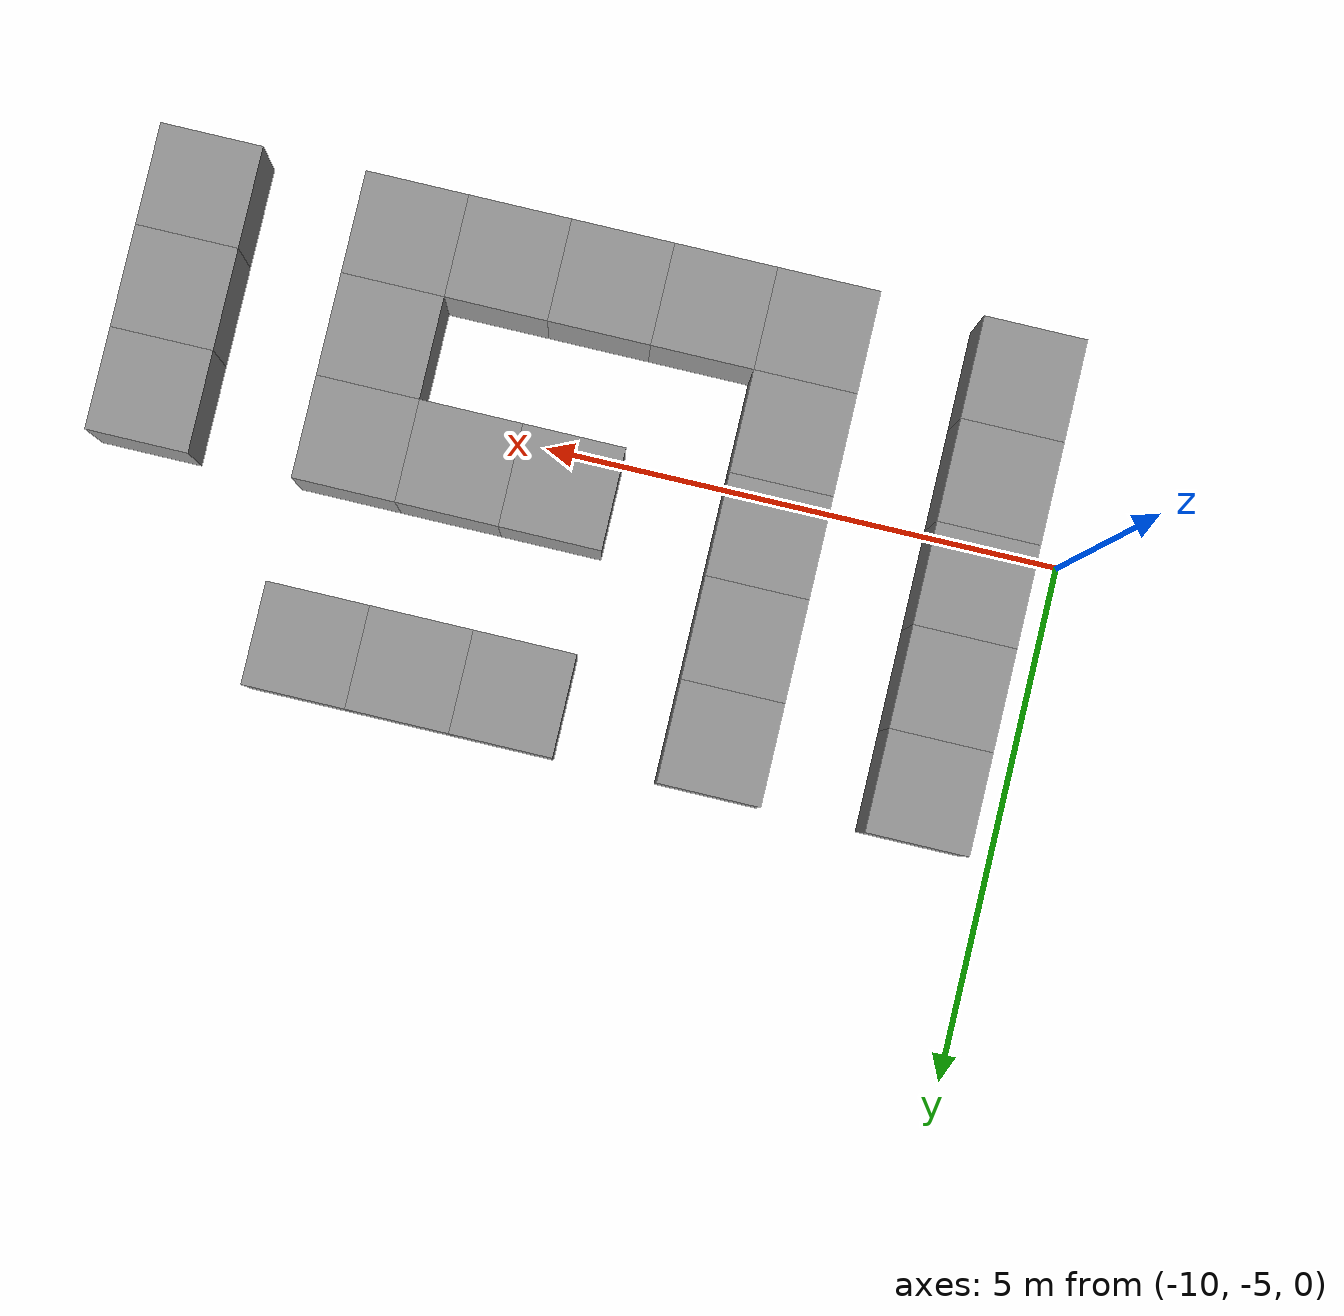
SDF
<sdf version="1.7">
 <model name="maze1">
  <link name="link_1_clone_118">
   <inertial>
    <mass>1</mass>
    <inertia>
     <ixx>0.166667</ixx>
     <ixy>0</ixy>
     <ixz>0</ixz>
     <iyy>0.166667</iyy>
     <iyz>0</iyz>
     <izz>0.166667</izz>
    </inertia>
   </inertial>
   <pose>-5.24618 -2.62535 -0 0 -0 0</pose>
   <visual name="visual">
    <geometry><box><size>1 1 1</size></box></geometry>
    <material>
     <lighting>1</lighting>
     <script><uri>file://media/materials/scripts/gazebo.material</uri><name>Gazebo/Grey</name></script>
     <shader type="pixel"><normal_map>__default__</normal_map></shader>
     <ambient>0.3 0.3 0.3 1</ambient>
     <diffuse>0.7 0.7 0.7 1</diffuse>
     <specular>0.01 0.01 0.01 1</specular>
     <emissive>0 0 0 1</emissive>
    </material>
   </visual>
   <collision name="collision">
    <geometry><box><size>1 1 1</size></box></geometry>
    <surface>
     <friction>
      <ode><mu>1</mu><mu2>1</mu2><fdir1>0 0 0</fdir1><slip1>0</slip1><slip2>0</slip2></ode>
      <torsional>
       <coefficient>1</coefficient>
       <patch_radius>0</patch_radius>
       <surface_radius>0</surface_radius>
       <use_patch_radius>1</use_patch_radius>
       <ode><slip>0</slip></ode>
      </torsional>
     </friction>
     <bounce><restitution_coefficient>0</restitution_coefficient><threshold>1e+06</threshold></bounce>
     <contact>
      <collide_without_contact>0</collide_without_contact>
      <collide_without_contact_bitmask>1</collide_without_contact_bitmask>
      <collide_bitmask>1</collide_bitmask>
      <ode>
       <soft_cfm>0</soft_cfm>
       <soft_erp>0.2</soft_erp>
       <kp>1e+13</kp>
       <kd>1</kd>
       <max_vel>0.01</max_vel>
       <min_depth>0</min_depth>
      </ode>
      <bullet>
       <split_impulse>1</split_impulse>
       <split_impulse_penetration_threshold>-0.01</split_impulse_penetration_threshold>
       <soft_cfm>0</soft_cfm>
       <soft_erp>0.2</soft_erp>
       <kp>1e+13</kp>
       <kd>1</kd>
      </bullet>
     </contact>
    </surface>
   </collision>
  </link>
  <link name="link_1_clone_119">
   <inertial>
    <mass>1</mass>
    <inertia>
     <ixx>0.166667</ixx>
     <ixy>0</ixy>
     <ixz>0</ixz>
     <iyy>0.166667</iyy>
     <iyz>0</iyz>
     <izz>0.166667</izz>
    </inertia>
   </inertial>
   <pose>-4.24618 -2.62535 -0 0 -0 0</pose>
   <visual name="visual">
    <geometry><box><size>1 1 1</size></box></geometry>
    <material>
     <lighting>1</lighting>
     <script><uri>file://media/materials/scripts/gazebo.material</uri><name>Gazebo/Grey</name></script>
     <shader type="pixel"><normal_map>__default__</normal_map></shader>
     <ambient>0.3 0.3 0.3 1</ambient>
     <diffuse>0.7 0.7 0.7 1</diffuse>
     <specular>0.01 0.01 0.01 1</specular>
     <emissive>0 0 0 1</emissive>
    </material>
   </visual>
   <collision name="collision">
    <geometry><box><size>1 1 1</size></box></geometry>
    <surface>
     <friction>
      <ode><mu>1</mu><mu2>1</mu2><fdir1>0 0 0</fdir1><slip1>0</slip1><slip2>0</slip2></ode>
      <torsional>
       <coefficient>1</coefficient>
       <patch_radius>0</patch_radius>
       <surface_radius>0</surface_radius>
       <use_patch_radius>1</use_patch_radius>
       <ode><slip>0</slip></ode>
      </torsional>
     </friction>
     <bounce><restitution_coefficient>0</restitution_coefficient><threshold>1e+06</threshold></bounce>
     <contact>
      <collide_without_contact>0</collide_without_contact>
      <collide_without_contact_bitmask>1</collide_without_contact_bitmask>
      <collide_bitmask>1</collide_bitmask>
      <ode>
       <soft_cfm>0</soft_cfm>
       <soft_erp>0.2</soft_erp>
       <kp>1e+13</kp>
       <kd>1</kd>
       <max_vel>0.01</max_vel>
       <min_depth>0</min_depth>
      </ode>
      <bullet>
       <split_impulse>1</split_impulse>
       <split_impulse_penetration_threshold>-0.01</split_impulse_penetration_threshold>
       <soft_cfm>0</soft_cfm>
       <soft_erp>0.2</soft_erp>
       <kp>1e+13</kp>
       <kd>1</kd>
      </bullet>
     </contact>
    </surface>
   </collision>
  </link>
  <link name="link_1_clone_120">
   <inertial>
    <mass>1</mass>
    <inertia>
     <ixx>0.166667</ixx>
     <ixy>0</ixy>
     <ixz>0</ixz>
     <iyy>0.166667</iyy>
     <iyz>0</iyz>
     <izz>0.166667</izz>
    </inertia>
   </inertial>
   <pose>-3.24618 -2.62535 -0 0 -0 0</pose>
   <visual name="visual">
    <geometry><box><size>1 1 1</size></box></geometry>
    <material>
     <lighting>1</lighting>
     <script><uri>file://media/materials/scripts/gazebo.material</uri><name>Gazebo/Grey</name></script>
     <shader type="pixel"><normal_map>__default__</normal_map></shader>
     <ambient>0.3 0.3 0.3 1</ambient>
     <diffuse>0.7 0.7 0.7 1</diffuse>
     <specular>0.01 0.01 0.01 1</specular>
     <emissive>0 0 0 1</emissive>
    </material>
   </visual>
   <collision name="collision">
    <geometry><box><size>1 1 1</size></box></geometry>
    <surface>
     <friction>
      <ode><mu>1</mu><mu2>1</mu2><fdir1>0 0 0</fdir1><slip1>0</slip1><slip2>0</slip2></ode>
      <torsional>
       <coefficient>1</coefficient>
       <patch_radius>0</patch_radius>
       <surface_radius>0</surface_radius>
       <use_patch_radius>1</use_patch_radius>
       <ode><slip>0</slip></ode>
      </torsional>
     </friction>
     <bounce><restitution_coefficient>0</restitution_coefficient><threshold>1e+06</threshold></bounce>
     <contact>
      <collide_without_contact>0</collide_without_contact>
      <collide_without_contact_bitmask>1</collide_without_contact_bitmask>
      <collide_bitmask>1</collide_bitmask>
      <ode>
       <soft_cfm>0</soft_cfm>
       <soft_erp>0.2</soft_erp>
       <kp>1e+13</kp>
       <kd>1</kd>
       <max_vel>0.01</max_vel>
       <min_depth>0</min_depth>
      </ode>
      <bullet>
       <split_impulse>1</split_impulse>
       <split_impulse_penetration_threshold>-0.01</split_impulse_penetration_threshold>
       <soft_cfm>0</soft_cfm>
       <soft_erp>0.2</soft_erp>
       <kp>1e+13</kp>
       <kd>1</kd>
      </bullet>
     </contact>
    </surface>
   </collision>
  </link>
  <link name="link_1_clone_122">
   <inertial>
    <mass>1</mass>
    <inertia>
     <ixx>0.166667</ixx>
     <ixy>0</ixy>
     <ixz>0</ixz>
     <iyy>0.166667</iyy>
     <iyz>0</iyz>
     <izz>0.166667</izz>
    </inertia>
   </inertial>
   <pose>-7.24618 -2.62535 -0 0 -0 0</pose>
   <visual name="visual">
    <geometry><box><size>1 1 1</size></box></geometry>
    <material>
     <lighting>1</lighting>
     <script><uri>file://media/materials/scripts/gazebo.material</uri><name>Gazebo/Grey</name></script>
     <shader type="pixel"><normal_map>__default__</normal_map></shader>
     <ambient>0.3 0.3 0.3 1</ambient>
     <diffuse>0.7 0.7 0.7 1</diffuse>
     <specular>0.01 0.01 0.01 1</specular>
     <emissive>0 0 0 1</emissive>
    </material>
   </visual>
   <collision name="collision">
    <geometry><box><size>1 1 1</size></box></geometry>
    <surface>
     <friction>
      <ode><mu>1</mu><mu2>1</mu2><fdir1>0 0 0</fdir1><slip1>0</slip1><slip2>0</slip2></ode>
      <torsional>
       <coefficient>1</coefficient>
       <patch_radius>0</patch_radius>
       <surface_radius>0</surface_radius>
       <use_patch_radius>1</use_patch_radius>
       <ode><slip>0</slip></ode>
      </torsional>
     </friction>
     <bounce><restitution_coefficient>0</restitution_coefficient><threshold>1e+06</threshold></bounce>
     <contact>
      <collide_without_contact>0</collide_without_contact>
      <collide_without_contact_bitmask>1</collide_without_contact_bitmask>
      <collide_bitmask>1</collide_bitmask>
      <ode>
       <soft_cfm>0</soft_cfm>
       <soft_erp>0.2</soft_erp>
       <kp>1e+13</kp>
       <kd>1</kd>
       <max_vel>0.01</max_vel>
       <min_depth>0</min_depth>
      </ode>
      <bullet>
       <split_impulse>1</split_impulse>
       <split_impulse_penetration_threshold>-0.01</split_impulse_penetration_threshold>
       <soft_cfm>0</soft_cfm>
       <soft_erp>0.2</soft_erp>
       <kp>1e+13</kp>
       <kd>1</kd>
      </bullet>
     </contact>
    </surface>
   </collision>
  </link>
  <link name="link_1_clone_123">
   <inertial>
    <mass>1</mass>
    <inertia>
     <ixx>0.166667</ixx>
     <ixy>0</ixy>
     <ixz>0</ixz>
     <iyy>0.166667</iyy>
     <iyz>0</iyz>
     <izz>0.166667</izz>
    </inertia>
   </inertial>
   <pose>-7.24618 -3.62535 -0 0 -0 0</pose>
   <visual name="visual">
    <geometry><box><size>1 1 1</size></box></geometry>
    <material>
     <lighting>1</lighting>
     <script><uri>file://media/materials/scripts/gazebo.material</uri><name>Gazebo/Grey</name></script>
     <shader type="pixel"><normal_map>__default__</normal_map></shader>
     <ambient>0.3 0.3 0.3 1</ambient>
     <diffuse>0.7 0.7 0.7 1</diffuse>
     <specular>0.01 0.01 0.01 1</specular>
     <emissive>0 0 0 1</emissive>
    </material>
   </visual>
   <collision name="collision">
    <geometry><box><size>1 1 1</size></box></geometry>
    <surface>
     <friction>
      <ode><mu>1</mu><mu2>1</mu2><fdir1>0 0 0</fdir1><slip1>0</slip1><slip2>0</slip2></ode>
      <torsional>
       <coefficient>1</coefficient>
       <patch_radius>0</patch_radius>
       <surface_radius>0</surface_radius>
       <use_patch_radius>1</use_patch_radius>
       <ode><slip>0</slip></ode>
      </torsional>
     </friction>
     <bounce><restitution_coefficient>0</restitution_coefficient><threshold>1e+06</threshold></bounce>
     <contact>
      <collide_without_contact>0</collide_without_contact>
      <collide_without_contact_bitmask>1</collide_without_contact_bitmask>
      <collide_bitmask>1</collide_bitmask>
      <ode>
       <soft_cfm>0</soft_cfm>
       <soft_erp>0.2</soft_erp>
       <kp>1e+13</kp>
       <kd>1</kd>
       <max_vel>0.01</max_vel>
       <min_depth>0</min_depth>
      </ode>
      <bullet>
       <split_impulse>1</split_impulse>
       <split_impulse_penetration_threshold>-0.01</split_impulse_penetration_threshold>
       <soft_cfm>0</soft_cfm>
       <soft_erp>0.2</soft_erp>
       <kp>1e+13</kp>
       <kd>1</kd>
      </bullet>
     </contact>
    </surface>
   </collision>
  </link>
  <link name="link_1_clone_124">
   <inertial>
    <mass>1</mass>
    <inertia>
     <ixx>0.166667</ixx>
     <ixy>0</ixy>
     <ixz>0</ixz>
     <iyy>0.166667</iyy>
     <iyz>0</iyz>
     <izz>0.166667</izz>
    </inertia>
   </inertial>
   <pose>-7.24618 -4.62534 -0 0 -0 0</pose>
   <visual name="visual">
    <geometry><box><size>1 1 1</size></box></geometry>
    <material>
     <lighting>1</lighting>
     <script><uri>file://media/materials/scripts/gazebo.material</uri><name>Gazebo/Grey</name></script>
     <shader type="pixel"><normal_map>__default__</normal_map></shader>
     <ambient>0.3 0.3 0.3 1</ambient>
     <diffuse>0.7 0.7 0.7 1</diffuse>
     <specular>0.01 0.01 0.01 1</specular>
     <emissive>0 0 0 1</emissive>
    </material>
   </visual>
   <collision name="collision">
    <geometry><box><size>1 1 1</size></box></geometry>
    <surface>
     <friction>
      <ode><mu>1</mu><mu2>1</mu2><fdir1>0 0 0</fdir1><slip1>0</slip1><slip2>0</slip2></ode>
      <torsional>
       <coefficient>1</coefficient>
       <patch_radius>0</patch_radius>
       <surface_radius>0</surface_radius>
       <use_patch_radius>1</use_patch_radius>
       <ode><slip>0</slip></ode>
      </torsional>
     </friction>
     <bounce><restitution_coefficient>0</restitution_coefficient><threshold>1e+06</threshold></bounce>
     <contact>
      <collide_without_contact>0</collide_without_contact>
      <collide_without_contact_bitmask>1</collide_without_contact_bitmask>
      <collide_bitmask>1</collide_bitmask>
      <ode>
       <soft_cfm>0</soft_cfm>
       <soft_erp>0.2</soft_erp>
       <kp>1e+13</kp>
       <kd>1</kd>
       <max_vel>0.01</max_vel>
       <min_depth>0</min_depth>
      </ode>
      <bullet>
       <split_impulse>1</split_impulse>
       <split_impulse_penetration_threshold>-0.01</split_impulse_penetration_threshold>
       <soft_cfm>0</soft_cfm>
       <soft_erp>0.2</soft_erp>
       <kp>1e+13</kp>
       <kd>1</kd>
      </bullet>
     </contact>
    </surface>
   </collision>
  </link>
  <link name="link_1_clone_125">
   <inertial>
    <mass>1</mass>
    <inertia>
     <ixx>0.166667</ixx>
     <ixy>0</ixy>
     <ixz>0</ixz>
     <iyy>0.166667</iyy>
     <iyz>0</iyz>
     <izz>0.166667</izz>
    </inertia>
   </inertial>
   <pose>-7.24618 -5.62535 -0 0 -0 0</pose>
   <visual name="visual">
    <geometry><box><size>1 1 1</size></box></geometry>
    <material>
     <lighting>1</lighting>
     <script><uri>file://media/materials/scripts/gazebo.material</uri><name>Gazebo/Grey</name></script>
     <shader type="pixel"><normal_map>__default__</normal_map></shader>
     <ambient>0.3 0.3 0.3 1</ambient>
     <diffuse>0.7 0.7 0.7 1</diffuse>
     <specular>0.01 0.01 0.01 1</specular>
     <emissive>0 0 0 1</emissive>
    </material>
   </visual>
   <collision name="collision">
    <geometry><box><size>1 1 1</size></box></geometry>
    <surface>
     <friction>
      <ode><mu>1</mu><mu2>1</mu2><fdir1>0 0 0</fdir1><slip1>0</slip1><slip2>0</slip2></ode>
      <torsional>
       <coefficient>1</coefficient>
       <patch_radius>0</patch_radius>
       <surface_radius>0</surface_radius>
       <use_patch_radius>1</use_patch_radius>
       <ode><slip>0</slip></ode>
      </torsional>
     </friction>
     <bounce><restitution_coefficient>0</restitution_coefficient><threshold>1e+06</threshold></bounce>
     <contact>
      <collide_without_contact>0</collide_without_contact>
      <collide_without_contact_bitmask>1</collide_without_contact_bitmask>
      <collide_bitmask>1</collide_bitmask>
      <ode>
       <soft_cfm>0</soft_cfm>
       <soft_erp>0.2</soft_erp>
       <kp>1e+13</kp>
       <kd>1</kd>
       <max_vel>0.01</max_vel>
       <min_depth>0</min_depth>
      </ode>
      <bullet>
       <split_impulse>1</split_impulse>
       <split_impulse_penetration_threshold>-0.01</split_impulse_penetration_threshold>
       <soft_cfm>0</soft_cfm>
       <soft_erp>0.2</soft_erp>
       <kp>1e+13</kp>
       <kd>1</kd>
      </bullet>
     </contact>
    </surface>
   </collision>
  </link>
  <link name="link_1_clone_126">
   <inertial>
    <mass>1</mass>
    <inertia>
     <ixx>0.166667</ixx>
     <ixy>0</ixy>
     <ixz>0</ixz>
     <iyy>0.166667</iyy>
     <iyz>0</iyz>
     <izz>0.166667</izz>
    </inertia>
   </inertial>
   <pose>-7.24618 -6.62535 -0 0 -0 0</pose>
   <visual name="visual">
    <geometry><box><size>1 1 1</size></box></geometry>
    <material>
     <lighting>1</lighting>
     <script><uri>file://media/materials/scripts/gazebo.material</uri><name>Gazebo/Grey</name></script>
     <shader type="pixel"><normal_map>__default__</normal_map></shader>
     <ambient>0.3 0.3 0.3 1</ambient>
     <diffuse>0.7 0.7 0.7 1</diffuse>
     <specular>0.01 0.01 0.01 1</specular>
     <emissive>0 0 0 1</emissive>
    </material>
   </visual>
   <collision name="collision">
    <geometry><box><size>1 1 1</size></box></geometry>
    <surface>
     <friction>
      <ode><mu>1</mu><mu2>1</mu2><fdir1>0 0 0</fdir1><slip1>0</slip1><slip2>0</slip2></ode>
      <torsional>
       <coefficient>1</coefficient>
       <patch_radius>0</patch_radius>
       <surface_radius>0</surface_radius>
       <use_patch_radius>1</use_patch_radius>
       <ode><slip>0</slip></ode>
      </torsional>
     </friction>
     <bounce><restitution_coefficient>0</restitution_coefficient><threshold>1e+06</threshold></bounce>
     <contact>
      <collide_without_contact>0</collide_without_contact>
      <collide_without_contact_bitmask>1</collide_without_contact_bitmask>
      <collide_bitmask>1</collide_bitmask>
      <ode>
       <soft_cfm>0</soft_cfm>
       <soft_erp>0.2</soft_erp>
       <kp>1e+13</kp>
       <kd>1</kd>
       <max_vel>0.01</max_vel>
       <min_depth>0</min_depth>
      </ode>
      <bullet>
       <split_impulse>1</split_impulse>
       <split_impulse_penetration_threshold>-0.01</split_impulse_penetration_threshold>
       <soft_cfm>0</soft_cfm>
       <soft_erp>0.2</soft_erp>
       <kp>1e+13</kp>
       <kd>1</kd>
      </bullet>
     </contact>
    </surface>
   </collision>
  </link>
  <link name="link_1_clone_194">
   <inertial>
    <mass>1</mass>
    <inertia>
     <ixx>0.166667</ixx>
     <ixy>0</ixy>
     <ixz>0</ixz>
     <iyy>0.166667</iyy>
     <iyz>0</iyz>
     <izz>0.166667</izz>
    </inertia>
   </inertial>
   <pose>-1.24618 -4.62534 -0 0 -0 0</pose>
   <visual name="visual">
    <geometry><box><size>1 1 1</size></box></geometry>
    <material>
     <lighting>1</lighting>
     <script><uri>file://media/materials/scripts/gazebo.material</uri><name>Gazebo/Grey</name></script>
     <shader type="pixel"><normal_map>__default__</normal_map></shader>
     <ambient>0.3 0.3 0.3 1</ambient>
     <diffuse>0.7 0.7 0.7 1</diffuse>
     <specular>0.01 0.01 0.01 1</specular>
     <emissive>0 0 0 1</emissive>
    </material>
   </visual>
   <collision name="collision">
    <geometry><box><size>1 1 1</size></box></geometry>
    <surface>
     <friction>
      <ode><mu>1</mu><mu2>1</mu2><fdir1>0 0 0</fdir1><slip1>0</slip1><slip2>0</slip2></ode>
      <torsional>
       <coefficient>1</coefficient>
       <patch_radius>0</patch_radius>
       <surface_radius>0</surface_radius>
       <use_patch_radius>1</use_patch_radius>
       <ode><slip>0</slip></ode>
      </torsional>
     </friction>
     <bounce><restitution_coefficient>0</restitution_coefficient><threshold>1e+06</threshold></bounce>
     <contact>
      <collide_without_contact>0</collide_without_contact>
      <collide_without_contact_bitmask>1</collide_without_contact_bitmask>
      <collide_bitmask>1</collide_bitmask>
      <ode>
       <soft_cfm>0</soft_cfm>
       <soft_erp>0.2</soft_erp>
       <kp>1e+13</kp>
       <kd>1</kd>
       <max_vel>0.01</max_vel>
       <min_depth>0</min_depth>
      </ode>
      <bullet>
       <split_impulse>1</split_impulse>
       <split_impulse_penetration_threshold>-0.01</split_impulse_penetration_threshold>
       <soft_cfm>0</soft_cfm>
       <soft_erp>0.2</soft_erp>
       <kp>1e+13</kp>
       <kd>1</kd>
      </bullet>
     </contact>
    </surface>
   </collision>
  </link>
  <link name="link_1_clone_195">
   <inertial>
    <mass>1</mass>
    <inertia>
     <ixx>0.166667</ixx>
     <ixy>0</ixy>
     <ixz>0</ixz>
     <iyy>0.166667</iyy>
     <iyz>0</iyz>
     <izz>0.166667</izz>
    </inertia>
   </inertial>
   <pose>-1.24618 -5.62535 -0 0 -0 0</pose>
   <visual name="visual">
    <geometry><box><size>1 1 1</size></box></geometry>
    <material>
     <lighting>1</lighting>
     <script><uri>file://media/materials/scripts/gazebo.material</uri><name>Gazebo/Grey</name></script>
     <shader type="pixel"><normal_map>__default__</normal_map></shader>
     <ambient>0.3 0.3 0.3 1</ambient>
     <diffuse>0.7 0.7 0.7 1</diffuse>
     <specular>0.01 0.01 0.01 1</specular>
     <emissive>0 0 0 1</emissive>
    </material>
   </visual>
   <collision name="collision">
    <geometry><box><size>1 1 1</size></box></geometry>
    <surface>
     <friction>
      <ode><mu>1</mu><mu2>1</mu2><fdir1>0 0 0</fdir1><slip1>0</slip1><slip2>0</slip2></ode>
      <torsional>
       <coefficient>1</coefficient>
       <patch_radius>0</patch_radius>
       <surface_radius>0</surface_radius>
       <use_patch_radius>1</use_patch_radius>
       <ode><slip>0</slip></ode>
      </torsional>
     </friction>
     <bounce><restitution_coefficient>0</restitution_coefficient><threshold>1e+06</threshold></bounce>
     <contact>
      <collide_without_contact>0</collide_without_contact>
      <collide_without_contact_bitmask>1</collide_without_contact_bitmask>
      <collide_bitmask>1</collide_bitmask>
      <ode>
       <soft_cfm>0</soft_cfm>
       <soft_erp>0.2</soft_erp>
       <kp>1e+13</kp>
       <kd>1</kd>
       <max_vel>0.01</max_vel>
       <min_depth>0</min_depth>
      </ode>
      <bullet>
       <split_impulse>1</split_impulse>
       <split_impulse_penetration_threshold>-0.01</split_impulse_penetration_threshold>
       <soft_cfm>0</soft_cfm>
       <soft_erp>0.2</soft_erp>
       <kp>1e+13</kp>
       <kd>1</kd>
      </bullet>
     </contact>
    </surface>
   </collision>
  </link>
  <link name="link_1_clone_196">
   <inertial>
    <mass>1</mass>
    <inertia>
     <ixx>0.166667</ixx>
     <ixy>0</ixy>
     <ixz>0</ixz>
     <iyy>0.166667</iyy>
     <iyz>0</iyz>
     <izz>0.166667</izz>
    </inertia>
   </inertial>
   <pose>-1.24618 -6.62535 -0 0 -0 0</pose>
   <visual name="visual">
    <geometry><box><size>1 1 1</size></box></geometry>
    <material>
     <lighting>1</lighting>
     <script><uri>file://media/materials/scripts/gazebo.material</uri><name>Gazebo/Grey</name></script>
     <shader type="pixel"><normal_map>__default__</normal_map></shader>
     <ambient>0.3 0.3 0.3 1</ambient>
     <diffuse>0.7 0.7 0.7 1</diffuse>
     <specular>0.01 0.01 0.01 1</specular>
     <emissive>0 0 0 1</emissive>
    </material>
   </visual>
   <collision name="collision">
    <geometry><box><size>1 1 1</size></box></geometry>
    <surface>
     <friction>
      <ode><mu>1</mu><mu2>1</mu2><fdir1>0 0 0</fdir1><slip1>0</slip1><slip2>0</slip2></ode>
      <torsional>
       <coefficient>1</coefficient>
       <patch_radius>0</patch_radius>
       <surface_radius>0</surface_radius>
       <use_patch_radius>1</use_patch_radius>
       <ode><slip>0</slip></ode>
      </torsional>
     </friction>
     <bounce><restitution_coefficient>0</restitution_coefficient><threshold>1e+06</threshold></bounce>
     <contact>
      <collide_without_contact>0</collide_without_contact>
      <collide_without_contact_bitmask>1</collide_without_contact_bitmask>
      <collide_bitmask>1</collide_bitmask>
      <ode>
       <soft_cfm>0</soft_cfm>
       <soft_erp>0.2</soft_erp>
       <kp>1e+13</kp>
       <kd>1</kd>
       <max_vel>0.01</max_vel>
       <min_depth>0</min_depth>
      </ode>
      <bullet>
       <split_impulse>1</split_impulse>
       <split_impulse_penetration_threshold>-0.01</split_impulse_penetration_threshold>
       <soft_cfm>0</soft_cfm>
       <soft_erp>0.2</soft_erp>
       <kp>1e+13</kp>
       <kd>1</kd>
      </bullet>
     </contact>
    </surface>
   </collision>
  </link>
  <link name="link_1_clone_206">
   <inertial>
    <mass>1</mass>
    <inertia>
     <ixx>0.166667</ixx>
     <ixy>0</ixy>
     <ixz>0</ixz>
     <iyy>0.166667</iyy>
     <iyz>0</iyz>
     <izz>0.166667</izz>
    </inertia>
   </inertial>
   <pose>-3.24618 -5.62535 -0 0 -0 0</pose>
   <visual name="visual">
    <geometry><box><size>1 1 1</size></box></geometry>
    <material>
     <lighting>1</lighting>
     <script><uri>file://media/materials/scripts/gazebo.material</uri><name>Gazebo/Grey</name></script>
     <shader type="pixel"><normal_map>__default__</normal_map></shader>
     <ambient>0.3 0.3 0.3 1</ambient>
     <diffuse>0.7 0.7 0.7 1</diffuse>
     <specular>0.01 0.01 0.01 1</specular>
     <emissive>0 0 0 1</emissive>
    </material>
   </visual>
   <collision name="collision">
    <geometry><box><size>1 1 1</size></box></geometry>
    <surface>
     <friction>
      <ode><mu>1</mu><mu2>1</mu2><fdir1>0 0 0</fdir1><slip1>0</slip1><slip2>0</slip2></ode>
      <torsional>
       <coefficient>1</coefficient>
       <patch_radius>0</patch_radius>
       <surface_radius>0</surface_radius>
       <use_patch_radius>1</use_patch_radius>
       <ode><slip>0</slip></ode>
      </torsional>
     </friction>
     <bounce><restitution_coefficient>0</restitution_coefficient><threshold>1e+06</threshold></bounce>
     <contact>
      <collide_without_contact>0</collide_without_contact>
      <collide_without_contact_bitmask>1</collide_without_contact_bitmask>
      <collide_bitmask>1</collide_bitmask>
      <ode>
       <soft_cfm>0</soft_cfm>
       <soft_erp>0.2</soft_erp>
       <kp>1e+13</kp>
       <kd>1</kd>
       <max_vel>0.01</max_vel>
       <min_depth>0</min_depth>
      </ode>
      <bullet>
       <split_impulse>1</split_impulse>
       <split_impulse_penetration_threshold>-0.01</split_impulse_penetration_threshold>
       <soft_cfm>0</soft_cfm>
       <soft_erp>0.2</soft_erp>
       <kp>1e+13</kp>
       <kd>1</kd>
      </bullet>
     </contact>
    </surface>
   </collision>
  </link>
  <link name="link_1_clone_207">
   <inertial>
    <mass>1</mass>
    <inertia>
     <ixx>0.166667</ixx>
     <ixy>0</ixy>
     <ixz>0</ixz>
     <iyy>0.166667</iyy>
     <iyz>0</iyz>
     <izz>0.166667</izz>
    </inertia>
   </inertial>
   <pose>-5.24618 -4.62534 -0 0 -0 0</pose>
   <visual name="visual">
    <geometry><box><size>1 1 1</size></box></geometry>
    <material>
     <lighting>1</lighting>
     <script><uri>file://media/materials/scripts/gazebo.material</uri><name>Gazebo/Grey</name></script>
     <shader type="pixel"><normal_map>__default__</normal_map></shader>
     <ambient>0.3 0.3 0.3 1</ambient>
     <diffuse>0.7 0.7 0.7 1</diffuse>
     <specular>0.01 0.01 0.01 1</specular>
     <emissive>0 0 0 1</emissive>
    </material>
   </visual>
   <collision name="collision">
    <geometry><box><size>1 1 1</size></box></geometry>
    <surface>
     <friction>
      <ode><mu>1</mu><mu2>1</mu2><fdir1>0 0 0</fdir1><slip1>0</slip1><slip2>0</slip2></ode>
      <torsional>
       <coefficient>1</coefficient>
       <patch_radius>0</patch_radius>
       <surface_radius>0</surface_radius>
       <use_patch_radius>1</use_patch_radius>
       <ode><slip>0</slip></ode>
      </torsional>
     </friction>
     <bounce><restitution_coefficient>0</restitution_coefficient><threshold>1e+06</threshold></bounce>
     <contact>
      <collide_without_contact>0</collide_without_contact>
      <collide_without_contact_bitmask>1</collide_without_contact_bitmask>
      <collide_bitmask>1</collide_bitmask>
      <ode>
       <soft_cfm>0</soft_cfm>
       <soft_erp>0.2</soft_erp>
       <kp>1e+13</kp>
       <kd>1</kd>
       <max_vel>0.01</max_vel>
       <min_depth>0</min_depth>
      </ode>
      <bullet>
       <split_impulse>1</split_impulse>
       <split_impulse_penetration_threshold>-0.01</split_impulse_penetration_threshold>
       <soft_cfm>0</soft_cfm>
       <soft_erp>0.2</soft_erp>
       <kp>1e+13</kp>
       <kd>1</kd>
      </bullet>
     </contact>
    </surface>
   </collision>
  </link>
  <link name="link_1_clone_208">
   <inertial>
    <mass>1</mass>
    <inertia>
     <ixx>0.166667</ixx>
     <ixy>0</ixy>
     <ixz>0</ixz>
     <iyy>0.166667</iyy>
     <iyz>0</iyz>
     <izz>0.166667</izz>
    </inertia>
   </inertial>
   <pose>-4.24618 -4.62534 -0 0 -0 0</pose>
   <visual name="visual">
    <geometry><box><size>1 1 1</size></box></geometry>
    <material>
     <lighting>1</lighting>
     <script><uri>file://media/materials/scripts/gazebo.material</uri><name>Gazebo/Grey</name></script>
     <shader type="pixel"><normal_map>__default__</normal_map></shader>
     <ambient>0.3 0.3 0.3 1</ambient>
     <diffuse>0.7 0.7 0.7 1</diffuse>
     <specular>0.01 0.01 0.01 1</specular>
     <emissive>0 0 0 1</emissive>
    </material>
   </visual>
   <collision name="collision">
    <geometry><box><size>1 1 1</size></box></geometry>
    <surface>
     <friction>
      <ode><mu>1</mu><mu2>1</mu2><fdir1>0 0 0</fdir1><slip1>0</slip1><slip2>0</slip2></ode>
      <torsional>
       <coefficient>1</coefficient>
       <patch_radius>0</patch_radius>
       <surface_radius>0</surface_radius>
       <use_patch_radius>1</use_patch_radius>
       <ode><slip>0</slip></ode>
      </torsional>
     </friction>
     <bounce><restitution_coefficient>0</restitution_coefficient><threshold>1e+06</threshold></bounce>
     <contact>
      <collide_without_contact>0</collide_without_contact>
      <collide_without_contact_bitmask>1</collide_without_contact_bitmask>
      <collide_bitmask>1</collide_bitmask>
      <ode>
       <soft_cfm>0</soft_cfm>
       <soft_erp>0.2</soft_erp>
       <kp>1e+13</kp>
       <kd>1</kd>
       <max_vel>0.01</max_vel>
       <min_depth>0</min_depth>
      </ode>
      <bullet>
       <split_impulse>1</split_impulse>
       <split_impulse_penetration_threshold>-0.01</split_impulse_penetration_threshold>
       <soft_cfm>0</soft_cfm>
       <soft_erp>0.2</soft_erp>
       <kp>1e+13</kp>
       <kd>1</kd>
      </bullet>
     </contact>
    </surface>
   </collision>
  </link>
  <link name="link_1_clone_209">
   <inertial>
    <mass>1</mass>
    <inertia>
     <ixx>0.166667</ixx>
     <ixy>0</ixy>
     <ixz>0</ixz>
     <iyy>0.166667</iyy>
     <iyz>0</iyz>
     <izz>0.166667</izz>
    </inertia>
   </inertial>
   <pose>-3.24618 -4.62534 -0 0 -0 0</pose>
   <visual name="visual">
    <geometry><box><size>1 1 1</size></box></geometry>
    <material>
     <lighting>1</lighting>
     <script><uri>file://media/materials/scripts/gazebo.material</uri><name>Gazebo/Grey</name></script>
     <shader type="pixel"><normal_map>__default__</normal_map></shader>
     <ambient>0.3 0.3 0.3 1</ambient>
     <diffuse>0.7 0.7 0.7 1</diffuse>
     <specular>0.01 0.01 0.01 1</specular>
     <emissive>0 0 0 1</emissive>
    </material>
   </visual>
   <collision name="collision">
    <geometry><box><size>1 1 1</size></box></geometry>
    <surface>
     <friction>
      <ode><mu>1</mu><mu2>1</mu2><fdir1>0 0 0</fdir1><slip1>0</slip1><slip2>0</slip2></ode>
      <torsional>
       <coefficient>1</coefficient>
       <patch_radius>0</patch_radius>
       <surface_radius>0</surface_radius>
       <use_patch_radius>1</use_patch_radius>
       <ode><slip>0</slip></ode>
      </torsional>
     </friction>
     <bounce><restitution_coefficient>0</restitution_coefficient><threshold>1e+06</threshold></bounce>
     <contact>
      <collide_without_contact>0</collide_without_contact>
      <collide_without_contact_bitmask>1</collide_without_contact_bitmask>
      <collide_bitmask>1</collide_bitmask>
      <ode>
       <soft_cfm>0</soft_cfm>
       <soft_erp>0.2</soft_erp>
       <kp>1e+13</kp>
       <kd>1</kd>
       <max_vel>0.01</max_vel>
       <min_depth>0</min_depth>
      </ode>
      <bullet>
       <split_impulse>1</split_impulse>
       <split_impulse_penetration_threshold>-0.01</split_impulse_penetration_threshold>
       <soft_cfm>0</soft_cfm>
       <soft_erp>0.2</soft_erp>
       <kp>1e+13</kp>
       <kd>1</kd>
      </bullet>
     </contact>
    </surface>
   </collision>
  </link>
  <link name="link_1_clone_210">
   <inertial>
    <mass>1</mass>
    <inertia>
     <ixx>0.166667</ixx>
     <ixy>0</ixy>
     <ixz>0</ixz>
     <iyy>0.166667</iyy>
     <iyz>0</iyz>
     <izz>0.166667</izz>
    </inertia>
   </inertial>
   <pose>-6.24618 -6.62535 -0 0 -0 0</pose>
   <visual name="visual">
    <geometry><box><size>1 1 1</size></box></geometry>
    <material>
     <lighting>1</lighting>
     <script><uri>file://media/materials/scripts/gazebo.material</uri><name>Gazebo/Grey</name></script>
     <shader type="pixel"><normal_map>__default__</normal_map></shader>
     <ambient>0.3 0.3 0.3 1</ambient>
     <diffuse>0.7 0.7 0.7 1</diffuse>
     <specular>0.01 0.01 0.01 1</specular>
     <emissive>0 0 0 1</emissive>
    </material>
   </visual>
   <collision name="collision">
    <geometry><box><size>1 1 1</size></box></geometry>
    <surface>
     <friction>
      <ode><mu>1</mu><mu2>1</mu2><fdir1>0 0 0</fdir1><slip1>0</slip1><slip2>0</slip2></ode>
      <torsional>
       <coefficient>1</coefficient>
       <patch_radius>0</patch_radius>
       <surface_radius>0</surface_radius>
       <use_patch_radius>1</use_patch_radius>
       <ode><slip>0</slip></ode>
      </torsional>
     </friction>
     <bounce><restitution_coefficient>0</restitution_coefficient><threshold>1e+06</threshold></bounce>
     <contact>
      <collide_without_contact>0</collide_without_contact>
      <collide_without_contact_bitmask>1</collide_without_contact_bitmask>
      <collide_bitmask>1</collide_bitmask>
      <ode>
       <soft_cfm>0</soft_cfm>
       <soft_erp>0.2</soft_erp>
       <kp>1e+13</kp>
       <kd>1</kd>
       <max_vel>0.01</max_vel>
       <min_depth>0</min_depth>
      </ode>
      <bullet>
       <split_impulse>1</split_impulse>
       <split_impulse_penetration_threshold>-0.01</split_impulse_penetration_threshold>
       <soft_cfm>0</soft_cfm>
       <soft_erp>0.2</soft_erp>
       <kp>1e+13</kp>
       <kd>1</kd>
      </bullet>
     </contact>
    </surface>
   </collision>
  </link>
  <link name="link_1_clone_211">
   <inertial>
    <mass>1</mass>
    <inertia>
     <ixx>0.166667</ixx>
     <ixy>0</ixy>
     <ixz>0</ixz>
     <iyy>0.166667</iyy>
     <iyz>0</iyz>
     <izz>0.166667</izz>
    </inertia>
   </inertial>
   <pose>-5.24618 -6.62535 -0 0 -0 0</pose>
   <visual name="visual">
    <geometry><box><size>1 1 1</size></box></geometry>
    <material>
     <lighting>1</lighting>
     <script><uri>file://media/materials/scripts/gazebo.material</uri><name>Gazebo/Grey</name></script>
     <shader type="pixel"><normal_map>__default__</normal_map></shader>
     <ambient>0.3 0.3 0.3 1</ambient>
     <diffuse>0.7 0.7 0.7 1</diffuse>
     <specular>0.01 0.01 0.01 1</specular>
     <emissive>0 0 0 1</emissive>
    </material>
   </visual>
   <collision name="collision">
    <geometry><box><size>1 1 1</size></box></geometry>
    <surface>
     <friction>
      <ode><mu>1</mu><mu2>1</mu2><fdir1>0 0 0</fdir1><slip1>0</slip1><slip2>0</slip2></ode>
      <torsional>
       <coefficient>1</coefficient>
       <patch_radius>0</patch_radius>
       <surface_radius>0</surface_radius>
       <use_patch_radius>1</use_patch_radius>
       <ode><slip>0</slip></ode>
      </torsional>
     </friction>
     <bounce><restitution_coefficient>0</restitution_coefficient><threshold>1e+06</threshold></bounce>
     <contact>
      <collide_without_contact>0</collide_without_contact>
      <collide_without_contact_bitmask>1</collide_without_contact_bitmask>
      <collide_bitmask>1</collide_bitmask>
      <ode>
       <soft_cfm>0</soft_cfm>
       <soft_erp>0.2</soft_erp>
       <kp>1e+13</kp>
       <kd>1</kd>
       <max_vel>0.01</max_vel>
       <min_depth>0</min_depth>
      </ode>
      <bullet>
       <split_impulse>1</split_impulse>
       <split_impulse_penetration_threshold>-0.01</split_impulse_penetration_threshold>
       <soft_cfm>0</soft_cfm>
       <soft_erp>0.2</soft_erp>
       <kp>1e+13</kp>
       <kd>1</kd>
      </bullet>
     </contact>
    </surface>
   </collision>
  </link>
  <link name="link_1_clone_212">
   <inertial>
    <mass>1</mass>
    <inertia>
     <ixx>0.166667</ixx>
     <ixy>0</ixy>
     <ixz>0</ixz>
     <iyy>0.166667</iyy>
     <iyz>0</iyz>
     <izz>0.166667</izz>
    </inertia>
   </inertial>
   <pose>-4.24618 -6.62535 -0 0 -0 0</pose>
   <visual name="visual">
    <geometry><box><size>1 1 1</size></box></geometry>
    <material>
     <lighting>1</lighting>
     <script><uri>file://media/materials/scripts/gazebo.material</uri><name>Gazebo/Grey</name></script>
     <shader type="pixel"><normal_map>__default__</normal_map></shader>
     <ambient>0.3 0.3 0.3 1</ambient>
     <diffuse>0.7 0.7 0.7 1</diffuse>
     <specular>0.01 0.01 0.01 1</specular>
     <emissive>0 0 0 1</emissive>
    </material>
   </visual>
   <collision name="collision">
    <geometry><box><size>1 1 1</size></box></geometry>
    <surface>
     <friction>
      <ode><mu>1</mu><mu2>1</mu2><fdir1>0 0 0</fdir1><slip1>0</slip1><slip2>0</slip2></ode>
      <torsional>
       <coefficient>1</coefficient>
       <patch_radius>0</patch_radius>
       <surface_radius>0</surface_radius>
       <use_patch_radius>1</use_patch_radius>
       <ode><slip>0</slip></ode>
      </torsional>
     </friction>
     <bounce><restitution_coefficient>0</restitution_coefficient><threshold>1e+06</threshold></bounce>
     <contact>
      <collide_without_contact>0</collide_without_contact>
      <collide_without_contact_bitmask>1</collide_without_contact_bitmask>
      <collide_bitmask>1</collide_bitmask>
      <ode>
       <soft_cfm>0</soft_cfm>
       <soft_erp>0.2</soft_erp>
       <kp>1e+13</kp>
       <kd>1</kd>
       <max_vel>0.01</max_vel>
       <min_depth>0</min_depth>
      </ode>
      <bullet>
       <split_impulse>1</split_impulse>
       <split_impulse_penetration_threshold>-0.01</split_impulse_penetration_threshold>
       <soft_cfm>0</soft_cfm>
       <soft_erp>0.2</soft_erp>
       <kp>1e+13</kp>
       <kd>1</kd>
      </bullet>
     </contact>
    </surface>
   </collision>
  </link>
  <link name="link_1_clone_213">
   <inertial>
    <mass>1</mass>
    <inertia>
     <ixx>0.166667</ixx>
     <ixy>0</ixy>
     <ixz>0</ixz>
     <iyy>0.166667</iyy>
     <iyz>0</iyz>
     <izz>0.166667</izz>
    </inertia>
   </inertial>
   <pose>-3.24618 -6.62535 -0 0 -0 0</pose>
   <visual name="visual">
    <geometry><box><size>1 1 1</size></box></geometry>
    <material>
     <lighting>1</lighting>
     <script><uri>file://media/materials/scripts/gazebo.material</uri><name>Gazebo/Grey</name></script>
     <shader type="pixel"><normal_map>__default__</normal_map></shader>
     <ambient>0.3 0.3 0.3 1</ambient>
     <diffuse>0.7 0.7 0.7 1</diffuse>
     <specular>0.01 0.01 0.01 1</specular>
     <emissive>0 0 0 1</emissive>
    </material>
   </visual>
   <collision name="collision">
    <geometry><box><size>1 1 1</size></box></geometry>
    <surface>
     <friction>
      <ode><mu>1</mu><mu2>1</mu2><fdir1>0 0 0</fdir1><slip1>0</slip1><slip2>0</slip2></ode>
      <torsional>
       <coefficient>1</coefficient>
       <patch_radius>0</patch_radius>
       <surface_radius>0</surface_radius>
       <use_patch_radius>1</use_patch_radius>
       <ode><slip>0</slip></ode>
      </torsional>
     </friction>
     <bounce><restitution_coefficient>0</restitution_coefficient><threshold>1e+06</threshold></bounce>
     <contact>
      <collide_without_contact>0</collide_without_contact>
      <collide_without_contact_bitmask>1</collide_without_contact_bitmask>
      <collide_bitmask>1</collide_bitmask>
      <ode>
       <soft_cfm>0</soft_cfm>
       <soft_erp>0.2</soft_erp>
       <kp>1e+13</kp>
       <kd>1</kd>
       <max_vel>0.01</max_vel>
       <min_depth>0</min_depth>
      </ode>
      <bullet>
       <split_impulse>1</split_impulse>
       <split_impulse_penetration_threshold>-0.01</split_impulse_penetration_threshold>
       <soft_cfm>0</soft_cfm>
       <soft_erp>0.2</soft_erp>
       <kp>1e+13</kp>
       <kd>1</kd>
      </bullet>
     </contact>
    </surface>
   </collision>
  </link>
  <link name="link_1_clone_27">
   <inertial>
    <mass>1</mass>
    <inertia>
     <ixx>0.166667</ixx>
     <ixy>0</ixy>
     <ixz>0</ixz>
     <iyy>0.166667</iyy>
     <iyz>0</iyz>
     <izz>0.166667</izz>
    </inertia>
   </inertial>
   <pose>-9.24618 -2.62535 -0 0 -0 0</pose>
   <visual name="visual">
    <geometry><box><size>1 1 1</size></box></geometry>
    <material>
     <lighting>1</lighting>
     <script><uri>file://media/materials/scripts/gazebo.material</uri><name>Gazebo/Grey</name></script>
     <shader type="pixel"><normal_map>__default__</normal_map></shader>
     <ambient>0.3 0.3 0.3 1</ambient>
     <diffuse>0.7 0.7 0.7 1</diffuse>
     <specular>0.01 0.01 0.01 1</specular>
     <emissive>0 0 0 1</emissive>
    </material>
   </visual>
   <collision name="collision">
    <geometry><box><size>1 1 1</size></box></geometry>
    <surface>
     <friction>
      <ode><mu>1</mu><mu2>1</mu2><fdir1>0 0 0</fdir1><slip1>0</slip1><slip2>0</slip2></ode>
      <torsional>
       <coefficient>1</coefficient>
       <patch_radius>0</patch_radius>
       <surface_radius>0</surface_radius>
       <use_patch_radius>1</use_patch_radius>
       <ode><slip>0</slip></ode>
      </torsional>
     </friction>
     <bounce><restitution_coefficient>0</restitution_coefficient><threshold>1e+06</threshold></bounce>
     <contact>
      <collide_without_contact>0</collide_without_contact>
      <collide_without_contact_bitmask>1</collide_without_contact_bitmask>
      <collide_bitmask>1</collide_bitmask>
      <ode>
       <soft_cfm>0</soft_cfm>
       <soft_erp>0.2</soft_erp>
       <kp>1e+13</kp>
       <kd>1</kd>
       <max_vel>0.01</max_vel>
       <min_depth>0</min_depth>
      </ode>
      <bullet>
       <split_impulse>1</split_impulse>
       <split_impulse_penetration_threshold>-0.01</split_impulse_penetration_threshold>
       <soft_cfm>0</soft_cfm>
       <soft_erp>0.2</soft_erp>
       <kp>1e+13</kp>
       <kd>1</kd>
      </bullet>
     </contact>
    </surface>
   </collision>
  </link>
  <link name="link_1_clone_28">
   <inertial>
    <mass>1</mass>
    <inertia>
     <ixx>0.166667</ixx>
     <ixy>0</ixy>
     <ixz>0</ixz>
     <iyy>0.166667</iyy>
     <iyz>0</iyz>
     <izz>0.166667</izz>
    </inertia>
   </inertial>
   <pose>-9.24618 -3.62535 -0 0 -0 0</pose>
   <visual name="visual">
    <geometry><box><size>1 1 1</size></box></geometry>
    <material>
     <lighting>1</lighting>
     <script><uri>file://media/materials/scripts/gazebo.material</uri><name>Gazebo/Grey</name></script>
     <shader type="pixel"><normal_map>__default__</normal_map></shader>
     <ambient>0.3 0.3 0.3 1</ambient>
     <diffuse>0.7 0.7 0.7 1</diffuse>
     <specular>0.01 0.01 0.01 1</specular>
     <emissive>0 0 0 1</emissive>
    </material>
   </visual>
   <collision name="collision">
    <geometry><box><size>1 1 1</size></box></geometry>
    <surface>
     <friction>
      <ode><mu>1</mu><mu2>1</mu2><fdir1>0 0 0</fdir1><slip1>0</slip1><slip2>0</slip2></ode>
      <torsional>
       <coefficient>1</coefficient>
       <patch_radius>0</patch_radius>
       <surface_radius>0</surface_radius>
       <use_patch_radius>1</use_patch_radius>
       <ode><slip>0</slip></ode>
      </torsional>
     </friction>
     <bounce><restitution_coefficient>0</restitution_coefficient><threshold>1e+06</threshold></bounce>
     <contact>
      <collide_without_contact>0</collide_without_contact>
      <collide_without_contact_bitmask>1</collide_without_contact_bitmask>
      <collide_bitmask>1</collide_bitmask>
      <ode>
       <soft_cfm>0</soft_cfm>
       <soft_erp>0.2</soft_erp>
       <kp>1e+13</kp>
       <kd>1</kd>
       <max_vel>0.01</max_vel>
       <min_depth>0</min_depth>
      </ode>
      <bullet>
       <split_impulse>1</split_impulse>
       <split_impulse_penetration_threshold>-0.01</split_impulse_penetration_threshold>
       <soft_cfm>0</soft_cfm>
       <soft_erp>0.2</soft_erp>
       <kp>1e+13</kp>
       <kd>1</kd>
      </bullet>
     </contact>
    </surface>
   </collision>
  </link>
  <link name="link_1_clone_29">
   <inertial>
    <mass>1</mass>
    <inertia>
     <ixx>0.166667</ixx>
     <ixy>0</ixy>
     <ixz>0</ixz>
     <iyy>0.166667</iyy>
     <iyz>0</iyz>
     <izz>0.166667</izz>
    </inertia>
   </inertial>
   <pose>-9.24618 -4.62535 -0 0 -0 0</pose>
   <visual name="visual">
    <geometry><box><size>1 1 1</size></box></geometry>
    <material>
     <lighting>1</lighting>
     <script><uri>file://media/materials/scripts/gazebo.material</uri><name>Gazebo/Grey</name></script>
     <shader type="pixel"><normal_map>__default__</normal_map></shader>
     <ambient>0.3 0.3 0.3 1</ambient>
     <diffuse>0.7 0.7 0.7 1</diffuse>
     <specular>0.01 0.01 0.01 1</specular>
     <emissive>0 0 0 1</emissive>
    </material>
   </visual>
   <collision name="collision">
    <geometry><box><size>1 1 1</size></box></geometry>
    <surface>
     <friction>
      <ode><mu>1</mu><mu2>1</mu2><fdir1>0 0 0</fdir1><slip1>0</slip1><slip2>0</slip2></ode>
      <torsional>
       <coefficient>1</coefficient>
       <patch_radius>0</patch_radius>
       <surface_radius>0</surface_radius>
       <use_patch_radius>1</use_patch_radius>
       <ode><slip>0</slip></ode>
      </torsional>
     </friction>
     <bounce><restitution_coefficient>0</restitution_coefficient><threshold>1e+06</threshold></bounce>
     <contact>
      <collide_without_contact>0</collide_without_contact>
      <collide_without_contact_bitmask>1</collide_without_contact_bitmask>
      <collide_bitmask>1</collide_bitmask>
      <ode>
       <soft_cfm>0</soft_cfm>
       <soft_erp>0.2</soft_erp>
       <kp>1e+13</kp>
       <kd>1</kd>
       <max_vel>0.01</max_vel>
       <min_depth>0</min_depth>
      </ode>
      <bullet>
       <split_impulse>1</split_impulse>
       <split_impulse_penetration_threshold>-0.01</split_impulse_penetration_threshold>
       <soft_cfm>0</soft_cfm>
       <soft_erp>0.2</soft_erp>
       <kp>1e+13</kp>
       <kd>1</kd>
      </bullet>
     </contact>
    </surface>
   </collision>
  </link>
  <link name="link_1_clone_30">
   <inertial>
    <mass>1</mass>
    <inertia>
     <ixx>0.166667</ixx>
     <ixy>0</ixy>
     <ixz>0</ixz>
     <iyy>0.166667</iyy>
     <iyz>0</iyz>
     <izz>0.166667</izz>
    </inertia>
   </inertial>
   <pose>-9.24618 -5.62535 -0 0 -0 0</pose>
   <visual name="visual">
    <geometry><box><size>1 1 1</size></box></geometry>
    <material>
     <lighting>1</lighting>
     <script><uri>file://media/materials/scripts/gazebo.material</uri><name>Gazebo/Grey</name></script>
     <shader type="pixel"><normal_map>__default__</normal_map></shader>
     <ambient>0.3 0.3 0.3 1</ambient>
     <diffuse>0.7 0.7 0.7 1</diffuse>
     <specular>0.01 0.01 0.01 1</specular>
     <emissive>0 0 0 1</emissive>
    </material>
   </visual>
   <collision name="collision">
    <geometry><box><size>1 1 1</size></box></geometry>
    <surface>
     <friction>
      <ode><mu>1</mu><mu2>1</mu2><fdir1>0 0 0</fdir1><slip1>0</slip1><slip2>0</slip2></ode>
      <torsional>
       <coefficient>1</coefficient>
       <patch_radius>0</patch_radius>
       <surface_radius>0</surface_radius>
       <use_patch_radius>1</use_patch_radius>
       <ode><slip>0</slip></ode>
      </torsional>
     </friction>
     <bounce><restitution_coefficient>0</restitution_coefficient><threshold>1e+06</threshold></bounce>
     <contact>
      <collide_without_contact>0</collide_without_contact>
      <collide_without_contact_bitmask>1</collide_without_contact_bitmask>
      <collide_bitmask>1</collide_bitmask>
      <ode>
       <soft_cfm>0</soft_cfm>
       <soft_erp>0.2</soft_erp>
       <kp>1e+13</kp>
       <kd>1</kd>
       <max_vel>0.01</max_vel>
       <min_depth>0</min_depth>
      </ode>
      <bullet>
       <split_impulse>1</split_impulse>
       <split_impulse_penetration_threshold>-0.01</split_impulse_penetration_threshold>
       <soft_cfm>0</soft_cfm>
       <soft_erp>0.2</soft_erp>
       <kp>1e+13</kp>
       <kd>1</kd>
      </bullet>
     </contact>
    </surface>
   </collision>
  </link>
  <link name="link_1_clone_31">
   <inertial>
    <mass>1</mass>
    <inertia>
     <ixx>0.166667</ixx>
     <ixy>0</ixy>
     <ixz>0</ixz>
     <iyy>0.166667</iyy>
     <iyz>0</iyz>
     <izz>0.166667</izz>
    </inertia>
   </inertial>
   <pose>-9.24618 -6.62535 -0 0 -0 0</pose>
   <visual name="visual">
    <geometry><box><size>1 1 1</size></box></geometry>
    <material>
     <lighting>1</lighting>
     <script><uri>file://media/materials/scripts/gazebo.material</uri><name>Gazebo/Grey</name></script>
     <shader type="pixel"><normal_map>__default__</normal_map></shader>
     <ambient>0.3 0.3 0.3 1</ambient>
     <diffuse>0.7 0.7 0.7 1</diffuse>
     <specular>0.01 0.01 0.01 1</specular>
     <emissive>0 0 0 1</emissive>
    </material>
   </visual>
   <collision name="collision">
    <geometry><box><size>1 1 1</size></box></geometry>
    <surface>
     <friction>
      <ode><mu>1</mu><mu2>1</mu2><fdir1>0 0 0</fdir1><slip1>0</slip1><slip2>0</slip2></ode>
      <torsional>
       <coefficient>1</coefficient>
       <patch_radius>0</patch_radius>
       <surface_radius>0</surface_radius>
       <use_patch_radius>1</use_patch_radius>
       <ode><slip>0</slip></ode>
      </torsional>
     </friction>
     <bounce><restitution_coefficient>0</restitution_coefficient><threshold>1e+06</threshold></bounce>
     <contact>
      <collide_without_contact>0</collide_without_contact>
      <collide_without_contact_bitmask>1</collide_without_contact_bitmask>
      <collide_bitmask>1</collide_bitmask>
      <ode>
       <soft_cfm>0</soft_cfm>
       <soft_erp>0.2</soft_erp>
       <kp>1e+13</kp>
       <kd>1</kd>
       <max_vel>0.01</max_vel>
       <min_depth>0</min_depth>
      </ode>
      <bullet>
       <split_impulse>1</split_impulse>
       <split_impulse_penetration_threshold>-0.01</split_impulse_penetration_threshold>
       <soft_cfm>0</soft_cfm>
       <soft_erp>0.2</soft_erp>
       <kp>1e+13</kp>
       <kd>1</kd>
      </bullet>
     </contact>
    </surface>
   </collision>
  </link>
  <static>0</static>
 </model>
</sdf>
